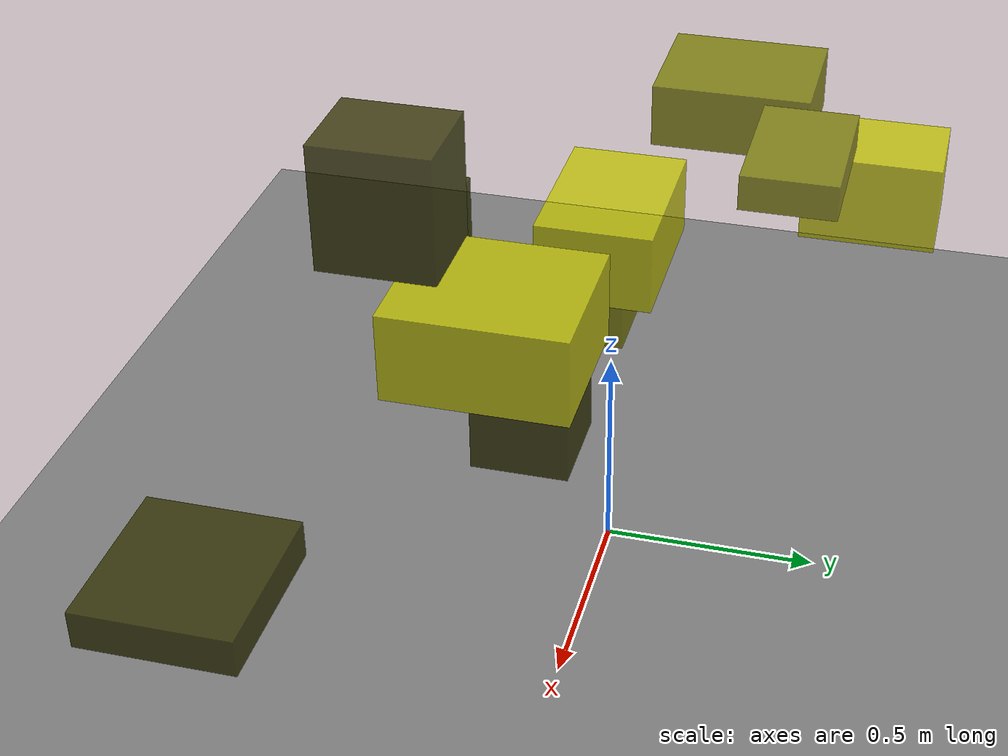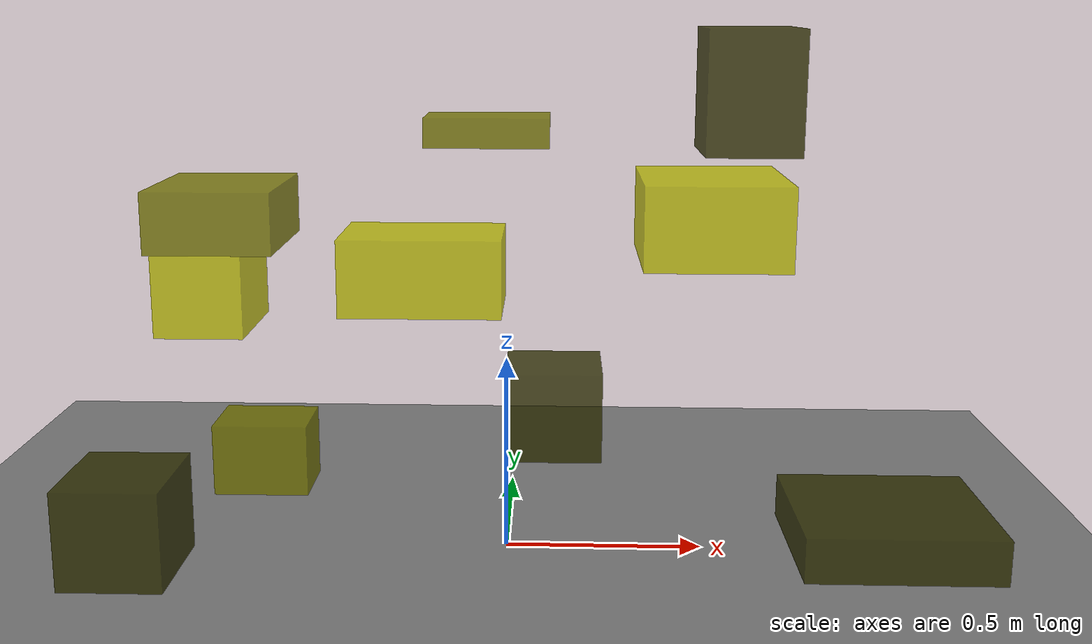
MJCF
<?xml version="1.0"?>
<mujoco model="obstacle_scene">
  <compiler angle="radian" coordinate="local"/>
  <option timestep="0.001" gravity="0 0 -9.81"/>

  <asset>
    <material name="obstacle_mat" rgba="0.8 0.8 0.0 0.8"/>
    <material name="ground_mat" rgba="0.5 0.5 0.5 1"/>
  </asset>

  <worldbody>
    <!-- Ground plane -->
    <geom name="ground" type="plane" size="3 3 0.1" material="ground_mat"/>

    <!-- Obstacles -->
    <body name="obstacle_0" pos="-0.762323 -0.723940 0.341332">
      <geom name="obs_0" type="box" size="0.108223 0.125222 0.104929" rgba="0.2 0.2 0.0 0.8"/>
    </body>
    <body name="obstacle_1" pos="-0.745707 0.157658 0.844030">
      <geom name="obs_1" type="box" size="0.161948 0.193677 0.079127" rgba="0.5 0.5 0.0 0.8"/>
    </body>
    <body name="obstacle_2" pos="-0.203290 -0.049052 0.738541">
      <geom name="obs_2" type="box" size="0.196224 0.136599 0.094298" rgba="0.8 0.8 0.0 0.8"/>
    </body>
    <body name="obstacle_3" pos="0.792626 -0.717390 0.348079">
      <geom name="obs_3" type="box" size="0.193602 0.180453 0.045813" rgba="0.2 0.2 0.0 0.8"/>
    </body>
    <body name="obstacle_4" pos="-0.066021 0.389980 1.038816">
      <geom name="obs_4" type="box" size="0.168541 0.104662 0.039788" rgba="0.5 0.5 0.0 0.8"/>
    </body>
    <body name="obstacle_5" pos="-0.874606 0.503311 0.575917">
      <geom name="obs_5" type="box" size="0.126407 0.174550 0.116568" rgba="0.8 0.8 0.0 0.8"/>
    </body>
    <body name="obstacle_6" pos="0.538319 -0.320649 1.194544">
      <geom name="obs_6" type="box" size="0.102842 0.122609 0.134176" rgba="0.2 0.2 0.0 0.8"/>
    </body>
    <body name="obstacle_7" pos="-0.583589 -0.162578 0.306952">
      <geom name="obs_7" type="box" size="0.113254 0.087721 0.085239" rgba="0.5 0.5 0.0 0.8"/>
    </body>
    <body name="obstacle_8" pos="0.485978 -0.131267 0.885452">
      <geom name="obs_8" type="box" size="0.168044 0.194714 0.097718" rgba="0.8 0.8 0.0 0.8"/>
    </body>
    <body name="obstacle_9" pos="0.118700 -0.159976 0.427313">
      <geom name="obs_9" type="box" size="0.113729 0.114203 0.106502" rgba="0.2 0.2 0.0 0.8"/>
    </body>
  </worldbody>
</mujoco>
